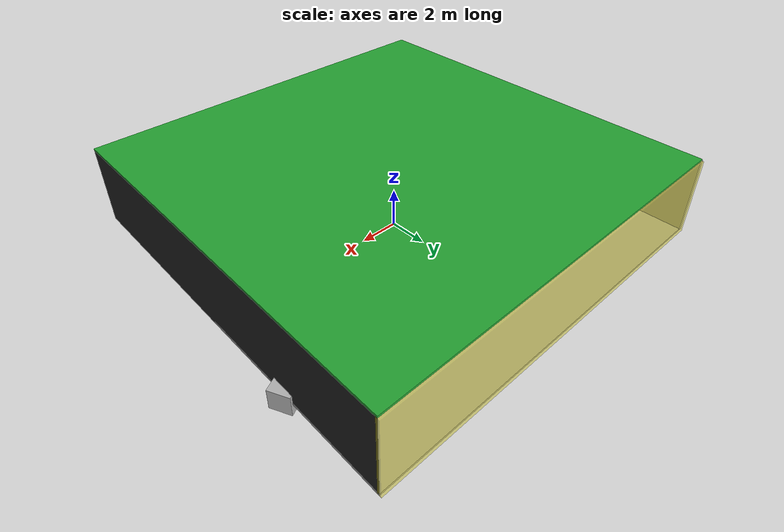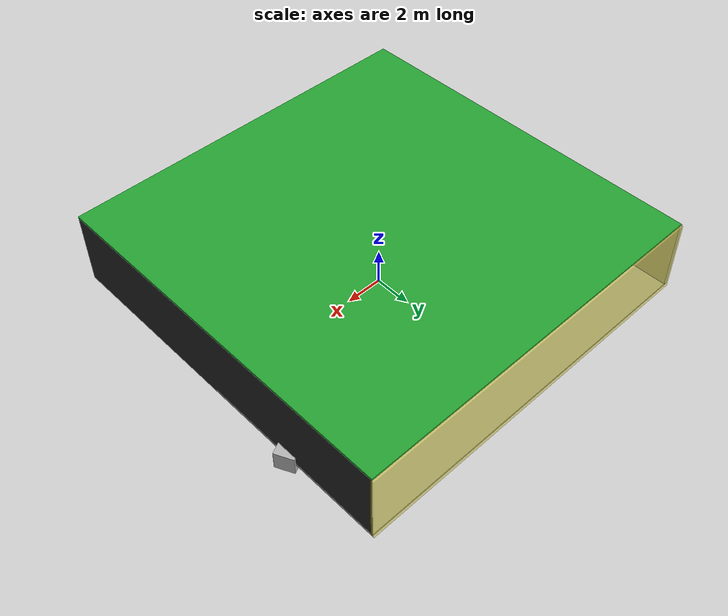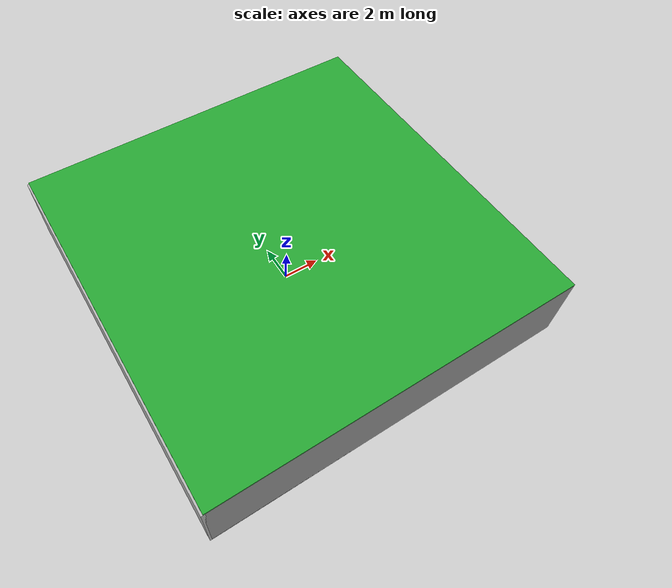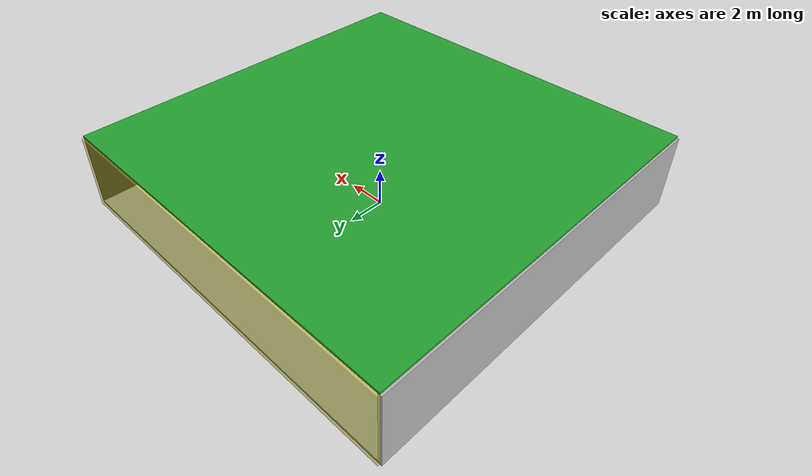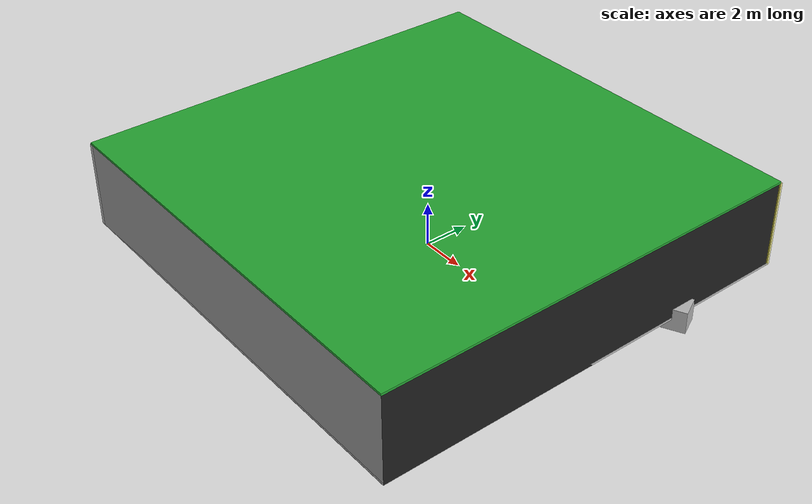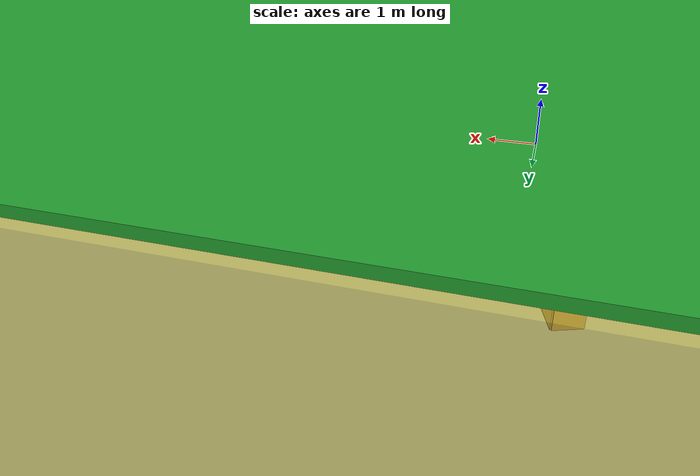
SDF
<sdf version="1.4">
 <world name="default">
  <physics type="ode">
   <max_step_size>0.001</max_step_size>
   <real_time_factor>1</real_time_factor>
   <real_time_update_rate>1000</real_time_update_rate>
   <gravity>0 0 -9.8</gravity>
  </physics>
  <scene><ambient>0.4 0.4 0.4 1</ambient><background>0.7 0.7 0.7 1</background><shadows>1</shadows></scene>
  <model name="Surrounding">
   <static>1</static>
   <link name="Ceiling">
    <collision name="Ceiling_Collision"><geometry><box><size>20 20 0.1</size></box></geometry></collision>
    <visual name="Ceiling_Visual">
     <geometry><box><size>20 20 0.1</size></box></geometry>
     <material>
      <script><uri>file://media/materials/scripts/gazebo.material</uri><name>Gazebo/Green</name></script>
     </material>
    </visual>
    <pose>0 0 4.05 0 0 0</pose>
   </link>
   <link name="Wall_South">
    <collision name="Wall_South_Collision">
     <geometry><box><size>20 0 4</size></box></geometry>
     <pose>0 0 2 0 -0 0</pose>
    </collision>
    <visual name="Wall_South_Visual">
     <pose>0 0 2 0 -0 0</pose>
     <geometry><box><size>20 0 4</size></box></geometry>
     <material>
      <script><uri>file://media/materials/scripts/gazebo.material</uri><name>Gazebo/GreyGradientSky</name></script>
     </material>
    </visual>
    <velocity_decay><linear>0</linear><angular>0</angular></velocity_decay>
    <pose>0 -10 0 0 -0 0</pose>
   </link>
   <link name="Wall_East">
    <collision name="Wall_21_Collision">
     <geometry><box><size>20 0 4</size></box></geometry>
     <pose>0 0 2 0 -0 0</pose>
    </collision>
    <visual name="Wall_21_Visual">
     <pose>0 0 2 0 -0 0</pose>
     <geometry><box><size>20 0 4</size></box></geometry>
     <material>
      <script><uri>file://media/materials/scripts/gazebo.material</uri><name>Gazebo/Black</name></script>
     </material>
    </visual>
    <velocity_decay><linear>0</linear><angular>0</angular></velocity_decay>
    <pose>10 0 0 0 -0 1.5708</pose>
   </link>
   <link name="Wall_North">
    <collision name="Wall_22_Collision">
     <geometry><box><size>20 0.2 4</size></box></geometry>
     <pose>0 0 2 0 -0 0</pose>
    </collision>
    <visual name="Wall_22_Visual">
     <pose>0 0 2 0 -0 0</pose>
     <geometry><box><size>20 0.2 4</size></box></geometry>
     <material>
      <script>
       <uri>file://media/materials/scripts/gazebo.material</uri>
       <name>Gazebo/YellowTransparent</name>
      </script>
     </material>
    </visual>
    <velocity_decay><linear>0</linear><angular>0</angular></velocity_decay>
    <pose>0 10 0 0 -0 0</pose>
   </link>
   <link name="Wall_West">
    <collision name="Wall_23_Collision">
     <geometry><box><size>20 0.2 4</size></box></geometry>
     <pose>0 0 2 0 -0 0</pose>
    </collision>
    <visual name="Wall_23_Visual">
     <pose>0 0 2 0 -0 0</pose>
     <geometry><box><size>20 0.2 4</size></box></geometry>
     <material>
      <script><uri>file://media/materials/scripts/gazebo.material</uri><name>Gazebo/Pioneer2Body</name></script>
     </material>
    </visual>
    <velocity_decay><linear>0</linear><angular>0</angular></velocity_decay>
    <pose>-10 0 0 0 0 -1.5708</pose>
   </link>
   <link name="Ground_link">
    <collision name="collision">
     <pose>0 0 .05 0 -0 0</pose>
     <geometry><box><size>20 20 0.1</size></box></geometry>
    </collision>
    <visual name="visual">
     <pose>0 0 .05 0 -0 0</pose>
     <geometry><box><size>20 20 0.1</size></box></geometry>
     <material>
      <script><uri>file://media/materials/scripts/gazebo.material</uri><name>Gazebo/LightOff</name></script>
     </material>
    </visual>
   </link>
   <static>1</static>
  </model>
  <spherical_coordinates>
   <surface_model>EARTH_WGS84</surface_model>
   <latitude_deg>0</latitude_deg>
   <longitude_deg>0</longitude_deg>
   <elevation>0</elevation>
   <heading_deg>0</heading_deg>
  </spherical_coordinates>
  <light name="lightball_0" type="diffuse">
   <diffuse>0.8 0.8 0.8 1</diffuse>
   <specular>0.2 0.2 0.2 1</specular>
   <attenuation>
    <range>100</range>
    <constant>0.7</constant>
    <linear>0.01</linear>
    <quadratic>0.001</quadratic>
   </attenuation>
   <direction>-0.5 0.1 -0.9</direction>
   <pose>2.12263876621 4.61729445462 2.67844574584 0 0 0</pose>
  </light>
  <light name="lightball_1" type="diffuse">
   <diffuse>0.8 0.8 0.8 1</diffuse>
   <specular>0.2 0.2 0.2 1</specular>
   <attenuation>
    <range>100</range>
    <constant>0.7</constant>
    <linear>0.01</linear>
    <quadratic>0.001</quadratic>
   </attenuation>
   <direction>-0.5 0.1 -0.9</direction>
   <pose>7.71183348847 -9.19765877655 3.47414974303 0 0 0</pose>
  </light>
  <light name="lightball_2" type="diffuse">
   <diffuse>0.8 0.8 0.8 1</diffuse>
   <specular>0.2 0.2 0.2 1</specular>
   <attenuation>
    <range>100</range>
    <constant>0.7</constant>
    <linear>0.01</linear>
    <quadratic>0.001</quadratic>
   </attenuation>
   <direction>-0.5 0.1 -0.9</direction>
   <pose>0.576480292286 3.71722680981 2.05317301118 0 0 0</pose>
  </light>
  <light name="lightball_3" type="diffuse">
   <diffuse>0.8 0.8 0.8 1</diffuse>
   <specular>0.2 0.2 0.2 1</specular>
   <attenuation>
    <range>100</range>
    <constant>0.7</constant>
    <linear>0.01</linear>
    <quadratic>0.001</quadratic>
   </attenuation>
   <direction>-0.5 0.1 -0.9</direction>
   <pose>-7.71342363675 -2.37293368562 0.604704419527 0 0 0</pose>
  </light>
  <light name="lightball_4" type="diffuse">
   <diffuse>0.8 0.8 0.8 1</diffuse>
   <specular>0.2 0.2 0.2 1</specular>
   <attenuation>
    <range>100</range>
    <constant>0.7</constant>
    <linear>0.01</linear>
    <quadratic>0.001</quadratic>
   </attenuation>
   <direction>-0.5 0.1 -0.9</direction>
   <pose>0.349717772902 -5.1555011046 2.35987236523 0 0 0</pose>
  </light>
  <light name="lightball_5" type="diffuse">
   <diffuse>0.8 0.8 0.8 1</diffuse>
   <specular>0.2 0.2 0.2 1</specular>
   <attenuation>
    <range>100</range>
    <constant>0.7</constant>
    <linear>0.01</linear>
    <quadratic>0.001</quadratic>
   </attenuation>
   <direction>-0.5 0.1 -0.9</direction>
   <pose>9.87084191192 -6.28868860554 2.03795153441 0 0 0</pose>
  </light>
  <light name="lightball_6" type="diffuse">
   <diffuse>0.8 0.8 0.8 1</diffuse>
   <specular>0.2 0.2 0.2 1</specular>
   <attenuation>
    <range>100</range>
    <constant>0.7</constant>
    <linear>0.01</linear>
    <quadratic>0.001</quadratic>
   </attenuation>
   <direction>-0.5 0.1 -0.9</direction>
   <pose>5.79246055049 3.88684917031 3.57503138324 0 0 0</pose>
  </light>
  <light name="lightball_7" type="diffuse">
   <diffuse>0.8 0.8 0.8 1</diffuse>
   <specular>0.2 0.2 0.2 1</specular>
   <attenuation>
    <range>100</range>
    <constant>0.7</constant>
    <linear>0.01</linear>
    <quadratic>0.001</quadratic>
   </attenuation>
   <direction>-0.5 0.1 -0.9</direction>
   <pose>-5.06417970618 -6.89317648841 3.25416358912 0 0 0</pose>
  </light>
  <light name="lightball_8" type="diffuse">
   <diffuse>0.8 0.8 0.8 1</diffuse>
   <specular>0.2 0.2 0.2 1</specular>
   <attenuation>
    <range>100</range>
    <constant>0.7</constant>
    <linear>0.01</linear>
    <quadratic>0.001</quadratic>
   </attenuation>
   <direction>-0.5 0.1 -0.9</direction>
   <pose>1.63704346464 -6.04868018795 3.82676916232 0 0 0</pose>
  </light>
  <light name="lightball_9" type="diffuse">
   <diffuse>0.8 0.8 0.8 1</diffuse>
   <specular>0.2 0.2 0.2 1</specular>
   <attenuation>
    <range>100</range>
    <constant>0.7</constant>
    <linear>0.01</linear>
    <quadratic>0.001</quadratic>
   </attenuation>
   <direction>-0.5 0.1 -0.9</direction>
   <pose>8.06629037588 9.18886446947 2.51167518645 0 0 0</pose>
  </light>
  <light name="lightball_10" type="diffuse">
   <diffuse>0.8 0.8 0.8 1</diffuse>
   <specular>0.2 0.2 0.2 1</specular>
   <attenuation>
    <range>100</range>
    <constant>0.7</constant>
    <linear>0.01</linear>
    <quadratic>0.001</quadratic>
   </attenuation>
   <direction>-0.5 0.1 -0.9</direction>
   <pose>-6.31574133457 -8.89603907029 2.20855697945 0 0 0</pose>
  </light>
  <light name="lightball_11" type="diffuse">
   <diffuse>0.8 0.8 0.8 1</diffuse>
   <specular>0.2 0.2 0.2 1</specular>
   <attenuation>
    <range>100</range>
    <constant>0.7</constant>
    <linear>0.01</linear>
    <quadratic>0.001</quadratic>
   </attenuation>
   <direction>-0.5 0.1 -0.9</direction>
   <pose>-2.39056626487 4.03268909498 0.977174123658 0 0 0</pose>
  </light>
  <light name="lightball_12" type="diffuse">
   <diffuse>0.8 0.8 0.8 1</diffuse>
   <specular>0.2 0.2 0.2 1</specular>
   <attenuation>
    <range>100</range>
    <constant>0.7</constant>
    <linear>0.01</linear>
    <quadratic>0.001</quadratic>
   </attenuation>
   <direction>-0.5 0.1 -0.9</direction>
   <pose>-7.83767879876 8.17420339789 0.663392893458 0 0 0</pose>
  </light>
  <light name="lightball_13" type="diffuse">
   <diffuse>0.8 0.8 0.8 1</diffuse>
   <specular>0.2 0.2 0.2 1</specular>
   <attenuation>
    <range>100</range>
    <constant>0.7</constant>
    <linear>0.01</linear>
    <quadratic>0.001</quadratic>
   </attenuation>
   <direction>-0.5 0.1 -0.9</direction>
   <pose>-2.17717483898 4.1856413298 2.40361850452 0 0 0</pose>
  </light>
  <include><uri>model://cabinet</uri><pose>-8.52034411993 -4.17266783566 0 0 0 0.431947897229</pose></include>
  <include><uri>model://cabinet</uri><pose>-0.799598441857 5.41900779412 0 0 0 0.337858526575</pose></include>
  <include><uri>model://table</uri><pose>1.74638049413 -4.76616412338 0 0 0 2.52014045312</pose></include>
  <include>
   <uri>model://construction_cone</uri>
   <pose>1.14717450873 -2.4168633529 0 0 0 2.06997349997</pose>
  </include>
  <include>
   <uri>model://robocup_3Dsim_goal</uri>
   <pose>2.05907365364 3.54091439893 0 0 0 1.29471045335</pose>
  </include>
  <include>
   <uri>model://textured_shapes</uri>
   <pose>5.48816225482 -2.59005234727 0 0 0 2.09645378629</pose>
  </include>
  <include><uri>model://cabinet</uri><pose>4.08512107813 0.90043407488 0 0 0 2.79044655953</pose></include>
  <include>
   <uri>model://textured_shapes</uri>
   <pose>8.52329927522 4.03590578828 0 0 0 2.02482905161</pose>
  </include>
 </world>
</sdf>

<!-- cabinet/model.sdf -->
<sdf version="1.5">
  <model name="cabinet">
    <static>true</static>
    <link name="cabinet_bottom_plate">
      <inertial>
        <pose>0 0 -1 0 0 0</pose>
        <inertia>
          <ixx>2.050000</ixx>
          <ixy>0</ixy>
          <ixz>0</ixz>
          <iyy>2.050000</iyy>
          <iyz>0</iyz>
          <izz>2.050000</izz>
        </inertia>
        <mass>25.000000</mass>
      </inertial>
      <collision name="cabinet_bottom_plate_geom">
        <pose>0 0 0.010000 0 0 0</pose>
        <geometry>
          <box>
            <size>0.450000 0.450000 0.020000</size>
          </box>
        </geometry>
      </collision>
      <visual name="cabinet_bottom_plate_geom_visual">
        <pose>0 0 0.010000 0 0 0</pose>
        <geometry>
          <box>
            <size>0.450000 0.450000 0.020000</size>
          </box>
        </geometry>
        <material>
          <script>
            <uri>model://media/materials/scripts/gazebo.material</uri>
            <name>Gazebo/Wood</name>
          </script>
        </material>
      </visual>
      <collision name="cabinet_bottom_plate_geom_cabinet_back_plate">
        <pose>0.235000 0 0.510000 0 0 0</pose>
        <geometry>
          <box>
            <size>0.020000 0.450000 1.020000</size>
          </box>
        </geometry>
      </collision>
      <visual name="cabinet_bottom_plate_geom_cabinet_back_plate_visual">
        <pose>0.235000 0 0.510000 0 0 0</pose>
        <geometry>
          <box>
            <size>0.020000 0.450000 1.020000</size>
          </box>
        </geometry>
        <material>
          <script>
            <uri>model://media/materials/scripts/gazebo.material</uri>
            <name>Gazebo/Wood</name>
          </script>
        </material>
      </visual>
      <collision name="cabinet_bottom_plate_geom_cabinet_left_plate">
        <pose>0 0.235000 0.510000 0 0 0</pose>
        <geometry>
          <box>
            <size>0.450000 0.020000 1.020000</size>
          </box>
        </geometry>
      </collision>
      <visual name="cabinet_bottom_plate_geom_cabinet_left_plate_visual">
        <pose>0 0.235000 0.510000 0 0 0</pose>
        <geometry>
          <box>
            <size>0.450000 0.020000 1.020000</size>
          </box>
        </geometry>
        <material>
          <script>
            <uri>model://media/materials/scripts/gazebo.material</uri>
            <name>Gazebo/Wood</name>
          </script>
        </material>
      </visual>
      <collision name="cabinet_bottom_plate_geom_cabinet_middle_plate">
        <pose>0 0 0.510000 0 0 0</pose>
        <geometry>
          <box>
            <size>0.450000 0.450000 0.020000</size>
          </box>
        </geometry>
      </collision>
      <visual name="cabinet_bottom_plate_geom_cabinet_middle_plate_visual">
        <pose>0 0 0.510000 0 0 0</pose>
        <geometry>
          <box>
            <size>0.450000 0.450000 0.020000</size>
          </box>
        </geometry>
        <material>
          <script>
            <uri>model://media/materials/scripts/gazebo.material</uri>
            <name>Gazebo/Wood</name>
          </script>
        </material>
      </visual>
      <collision name="cabinet_bottom_plate_geom_cabinet_right_plate">
        <pose>0 -0.235000 0.510000 0 0 0</pose>
        <geometry>
          <box>
            <size>0.450000 0.020000 1.020000</size>
          </box>
        </geometry>
      </collision>
      <visual name="cabinet_bottom_plate_geom_cabinet_right_plate_visual">
        <pose>0 -0.235000 0.510000 0 0 0</pose>
        <geometry>
          <box>
            <size>0.450000 0.020000 1.020000</size>
          </box>
        </geometry>
        <material>
          <script>
            <uri>model://media/materials/scripts/gazebo.material</uri>
            <name>Gazebo/Wood</name>
          </script>
        </material>
      </visual>
      <collision name="cabinet_bottom_plate_geom_cabinet_top_plate">
        <pose>0 0 1.010000 0 0 0</pose>
        <geometry>
          <box>
            <size>0.450000 0.450000 0.020000</size>
          </box>
        </geometry>
      </collision>
      <visual name="cabinet_bottom_plate_geom_cabinet_top_plate_visual">
        <pose>0 0 1.010000 0 0 0</pose>
        <geometry>
          <box>
            <size>0.450000 0.450000 0.020000</size>
          </box>
        </geometry>
        <material>
          <script>
            <uri>model://media/materials/scripts/gazebo.material</uri>
            <name>Gazebo/Wood</name>
          </script>
        </material>
      </visual>
    </link>
  </model>
</sdf>

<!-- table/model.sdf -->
<sdf version="1.5">
  <model name="table">
    <static>true</static>
    <link name="link">
      <collision name="surface">
        <pose>0 0 1.0 0 0 0</pose>
        <geometry>
          <box>
            <size>1.5 0.8 0.03</size>
          </box>
        </geometry>
        <surface>
          <friction>
            <ode>
              <mu>0.6</mu>
              <mu2>0.6</mu2>
            </ode>
          </friction>
        </surface>
      </collision>
      <visual name="visual1">
        <pose>0 0 1.0 0 0 0</pose>
        <geometry>
          <box>
            <size>1.5 0.8 0.03</size>
          </box>
        </geometry>
        <material>
          <script>
            <uri>model://media/materials/scripts/gazebo.material</uri>
            <name>Gazebo/Wood</name>
          </script>
        </material>
      </visual>
      <collision name="front_left_leg">
        <pose>0.68 0.38 0.5 0 0 0</pose>
        <geometry>
          <cylinder>
            <radius>0.02</radius>
            <length>1.0</length>
          </cylinder>
        </geometry>
      </collision>
      <visual name="front_left_leg">
        <pose>0.68 0.38 0.5 0 0 0</pose>
        <geometry>
          <cylinder>
            <radius>0.02</radius>
            <length>1.0</length>
          </cylinder>
        </geometry>
        <material>
          <script>
            <uri>model://media/materials/scripts/gazebo.material</uri>
            <name>Gazebo/Grey</name>
          </script>
        </material>
      </visual>
      <collision name="front_right_leg">
        <pose>0.68 -0.38 0.5 0 0 0</pose>
        <geometry>
          <cylinder>
            <radius>0.02</radius>
            <length>1.0</length>
          </cylinder>
        </geometry>
      </collision>
      <visual name="front_right_leg">
        <pose>0.68 -0.38 0.5 0 0 0</pose>
        <geometry>
          <cylinder>
            <radius>0.02</radius>
            <length>1.0</length>
          </cylinder>
        </geometry>
        <material>
          <script>
            <uri>model://media/materials/scripts/gazebo.material</uri>
            <name>Gazebo/Grey</name>
          </script>
        </material>
      </visual>
      <collision name="back_right_leg">
        <pose>-0.68 -0.38 0.5 0 0 0</pose>
        <geometry>
          <cylinder>
            <radius>0.02</radius>
            <length>1.0</length>
          </cylinder>
        </geometry>
      </collision>
      <visual name="back_right_leg">
        <pose>-0.68 -0.38 0.5 0 0 0</pose>
        <geometry>
          <cylinder>
            <radius>0.02</radius>
            <length>1.0</length>
          </cylinder>
        </geometry>
        <material>
          <script>
            <uri>model://media/materials/scripts/gazebo.material</uri>
            <name>Gazebo/Grey</name>
          </script>
        </material>
      </visual>
      <collision name="back_left_leg">
        <pose>-0.68 0.38 0.5 0 0 0</pose>
        <geometry>
          <cylinder>
            <radius>0.02</radius>
            <length>1.0</length>
          </cylinder>
        </geometry>
      </collision>
      <visual name="back_left_leg">
        <pose>-0.68 0.38 0.5 0 0 0</pose>
        <geometry>
          <cylinder>
            <radius>0.02</radius>
            <length>1.0</length>
          </cylinder>
        </geometry>
        <material>
          <script>
            <uri>model://media/materials/scripts/gazebo.material</uri>
            <name>Gazebo/Grey</name>
          </script>
        </material>
      </visual>
    </link>
  </model>
</sdf>

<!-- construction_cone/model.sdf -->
<sdf version="1.5">
  <model name="Construction Cone">
    <link name="link">
      <collision name="collision">
        <geometry>
          <mesh>
            <scale>10 10 10</scale>
            <uri>file://isr-testbed/construction_cone/meshes/construction_cone.dae</uri>
          </mesh>
        </geometry>
      </collision>
      <visual name="visual">
        <geometry>
          <mesh>
            <scale>10 10 10</scale>
            <uri>file://isr-testbed/construction_cone/meshes/construction_cone.dae</uri>
          </mesh>
        </geometry>
      </visual>
    </link>
  </model>
</sdf>

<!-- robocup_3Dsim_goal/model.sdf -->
<sdf version="1.5">
  <model name="robocup_3d_goal">
    <static>true</static>
    <link name="left_post">
      <pose>0 1.05 0.45 0 0 0</pose>
      <collision name="collision">
        <geometry>
          <cylinder>
            <radius>0.05</radius>
            <length>0.9</length>
          </cylinder>
        </geometry>
      </collision>
      <visual name="visual">
        <geometry>
          <cylinder>
            <radius>0.05</radius>
            <length>0.9</length>
          </cylinder>
        </geometry>
        <material>
          <script>
            <uri>file://media/materials/scripts/gazebo.material</uri>
            <name>Gazebo/ZincYellow</name>
          </script>
        </material>
      </visual>
    </link>
    <link name="left_support_horiz_lower">
      <pose>0.30 1.05 0.01 0 0 0</pose>
      <collision name="collision">
        <geometry>
          <box>
            <size>0.50 0.02 0.02</size>
          </box>
        </geometry>
      </collision>
      <visual name="visual">
        <geometry>
          <box>
            <size>0.50 0.02 0.02</size>
          </box>
        </geometry>
        <material>
          <script>
            <uri>file://media/materials/scripts/gazebo.material</uri>
            <name>Gazebo/White</name>
          </script>
        </material>
      </visual>
    </link>
    <link name="left_support_horiz_upper">
      <pose>0.30 1.05 0.79 0 0 0</pose>
      <collision name="collision">
        <geometry>
          <box>
            <size>0.50 0.02 0.02</size>
          </box>
        </geometry>
      </collision>
      <visual name="visual">
        <geometry>
          <box>
            <size>0.50 0.02 0.02</size>
          </box>
        </geometry>
        <material>
          <script>
            <uri>file://media/materials/scripts/gazebo.material</uri>
            <name>Gazebo/White</name>
          </script>
        </material>
      </visual>
    </link>
    <link name="left_support_vertical">
      <pose>0.56 1.05 0.4 0 1.5708 0</pose>
      <collision name="collision">
        <geometry>
          <box>
            <size>0.80 0.02 0.02</size>
          </box>
        </geometry>
      </collision>
      <visual name="visual">
        <geometry>
          <box>
            <size>0.80 0.02 0.02</size>
          </box>
        </geometry>
        <material>
          <script>
            <uri>file://media/materials/scripts/gazebo.material</uri>
            <name>Gazebo/White</name>
          </script>
        </material>
      </visual>
    </link>
    <link name="right_support_horiz_lower">
      <pose>0.30 -1.05 0.01 0 0 0</pose>
      <collision name="collision">
        <geometry>
          <box>
            <size>0.50 0.02 0.02</size>
          </box>
        </geometry>
      </collision>
      <visual name="visual">
        <geometry>
          <box>
            <size>0.50 0.02 0.02</size>
          </box>
        </geometry>
        <material>
          <script>
            <uri>file://media/materials/scripts/gazebo.material</uri>
            <name>Gazebo/White</name>
          </script>
        </material>
      </visual>
    </link>
    <link name="right_support_horiz_upper">
      <pose>0.30 -1.05 0.79 0 0 0</pose>
      <collision name="collision">
        <geometry>
          <box>
            <size>0.50 0.02 0.02</size>
          </box>
        </geometry>
      </collision>
      <visual name="visual">
        <geometry>
          <box>
            <size>0.50 0.02 0.02</size>
          </box>
        </geometry>
        <material>
          <script>
            <uri>file://media/materials/scripts/gazebo.material</uri>
            <name>Gazebo/White</name>
          </script>
        </material>
      </visual>
    </link>
    <link name="right_support_vertical">
      <pose>0.56 -1.05 0.4 0 1.5708 0</pose>
      <collision name="collision">
        <geometry>
          <box>
            <size>0.80 0.02 0.02</size>
          </box>
        </geometry>
      </collision>
      <visual name="visual">
        <geometry>
          <box>
            <size>0.80 0.02 0.02</size>
          </box>
        </geometry>
        <material>
          <script>
            <uri>file://media/materials/scripts/gazebo.material</uri>
            <name>Gazebo/White</name>
          </script>
        </material>
      </visual>
    </link>
    <link name="center_support_horiz_lower">
      <pose>0.56 0 0.01 0 1.5708 0</pose>
      <collision name="collision">
        <geometry>
          <box>
            <size>0.02 2.08 0.02</size>
          </box>
        </geometry>
      </collision>
      <visual name="visual">
        <geometry>
          <box>
            <size>0.02 2.08 0.02</size>
          </box>
        </geometry>
        <material>
          <script>
            <uri>file://media/materials/scripts/gazebo.material</uri>
            <name>Gazebo/White</name>
          </script>
        </material>
      </visual>
    </link>
    <link name="center_support_horiz_upper">
      <pose>0.56 0 0.79 0 1.5708 0</pose>
      <collision name="collision">
        <geometry>
          <box>
            <size>0.02 2.08 0.02</size>
          </box>
        </geometry>
      </collision>
      <visual name="visual">
        <geometry>
          <box>
            <size>0.02 2.08 0.02</size>
          </box>
        </geometry>
        <material>
          <script>
            <uri>file://media/materials/scripts/gazebo.material</uri>
            <name>Gazebo/White</name>
          </script>
        </material>
      </visual>
    </link>
    <link name="right_post">
      <pose>0 -1.05 0.45 0 0 0</pose>
      <collision name="collision">
        <geometry>
          <cylinder>
            <radius>0.05</radius>
            <length>0.9</length>
          </cylinder>
        </geometry>
      </collision>
      <visual name="visual">
        <geometry>
          <cylinder>
            <radius>0.05</radius>
            <length>0.9</length>
          </cylinder>
        </geometry>
        <material>
          <script>
            <uri>file://media/materials/scripts/gazebo.material</uri>
            <name>Gazebo/ZincYellow</name>
          </script>
        </material>
      </visual>
    </link>
    <link name="crossbar">
      <pose>0 0 0.85 1.57 1.57 0</pose>
      <collision name="collision">
        <geometry>
          <cylinder>
            <radius>0.05</radius>
            <length>2.0</length>
          </cylinder>
        </geometry>
      </collision>
      <visual name="visual">
        <geometry>
          <cylinder>
            <radius>0.05</radius>
            <length>2.0</length>
          </cylinder>
        </geometry>
        <material>
          <script>
            <uri>file://media/materials/scripts/gazebo.material</uri>
            <name>Gazebo/ZincYellow</name>
          </script>
        </material>
      </visual>
    </link>
    <link name="center_net">
      <pose>0.56 0 0.40 0 0 0</pose>
      <collision name="collision">
        <geometry>
          <box>
            <size>0.01 2.1 0.80</size>
          </box>
        </geometry>
      </collision>
      <visual name="visual">
        <geometry>
          <box>
            <size>0.01 2.1 0.80</size>
          </box>
        </geometry>
        <material>
          <script>
            <uri>model://../model_source/models/robocup09_spl_field/materials/scripts/</uri>
            <uri>model://../model_source/models/robocup09_spl_field/materials/textures/</uri>
            <name>RoboCup/Net</name>
          </script>
        </material>
      </visual>
    </link>
    <link name="left_net">
      <pose>0.30 1.05 0.40 0 0 0</pose>
      <collision name="collision">
        <geometry>
          <box>
            <size>0.50 0.01 0.76</size>
          </box>
        </geometry>
      </collision>
      <visual name="visual">
        <geometry>
          <box>
            <size>0.50 0.01 0.76</size>
          </box>
        </geometry>
        <material>
          <script>
            <uri>model://../model_source/models/robocup09_spl_field/materials/scripts/</uri>
            <uri>model://../model_source/models/robocup09_spl_field/materials/textures/</uri>
            <name>RoboCup/Net</name>
          </script>
        </material>
      </visual>
    </link>
    <link name="right_net">
      <pose>0.30 -1.05 0.40 0 0 0</pose>
      <collision name="collision">
        <geometry>
          <box>
            <size>0.50 0.01 0.76</size>
          </box>
        </geometry>
      </collision>
      <visual name="visual">
        <geometry>
          <box>
            <size>0.50 0.01 0.76</size>
          </box>
        </geometry>
        <material>
          <script>
            <uri>model://../model_source/models/robocup09_spl_field/materials/scripts/</uri>
            <uri>model://../model_source/models/robocup09_spl_field/materials/textures/</uri>
            <name>RoboCup/Net</name>
          </script>
        </material>
      </visual>
    </link>
  </model>
</sdf>

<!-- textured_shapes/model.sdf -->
<sdf version="1.6">
  <model name="textured_shapes">
    <pose>0 0 0.5 0 0 0</pose>
    <link name="box">
      <pose>0 -1.5 0 0 0 0</pose>
      <collision name="collision">
        <geometry>
          <box>
            <size>1 1 1</size>
          </box>
        </geometry>
      </collision>
      <visual name="visual">
        <geometry>
          <box>
            <size>1 1 1</size>
          </box>
        </geometry>
        <material>
          <script>
            <uri>model://../model_source/models/textured_shapes/materials/scripts</uri>
            <uri>model://../model_source/models/textured_shapes/materials/textures</uri>
            <name>TexturedShape/Squares</name>
          </script>
        </material>
      </visual>
    </link>
    <link name="sphere">
      <collision name="collision">
        <geometry>
          <sphere>
            <radius>0.5</radius>
          </sphere>
        </geometry>
      </collision>
      <visual name="visual">
        <geometry>
          <sphere>
            <radius>0.5</radius>
          </sphere>
        </geometry>
        <material>
          <script>
            <uri>model://../model_source/models/textured_shapes/materials/scripts</uri>
            <uri>model://../model_source/models/textured_shapes/materials/textures</uri>
            <name>TexturedShape/Squares</name>
          </script>
        </material>
      </visual>
    </link>
    <link name="cylinder">
      <pose>0 1.5 0 0 0 0</pose>
      <collision name="collision">
        <geometry>
          <cylinder>
            <radius>0.5</radius>
            <length>1</length>
          </cylinder>
        </geometry>
      </collision>
      <visual name="visual">
        <geometry>
          <cylinder>
            <radius>0.5</radius>
            <length>1</length>
          </cylinder>
        </geometry>
        <material>
          <script>
            <uri>model://../model_source/models/textured_shapes/materials/scripts</uri>
            <uri>model://../model_source/models/textured_shapes/materials/textures</uri>
            <name>TexturedShape/Squares</name>
          </script>
        </material>
      </visual>
    </link>
  </model>
</sdf>
